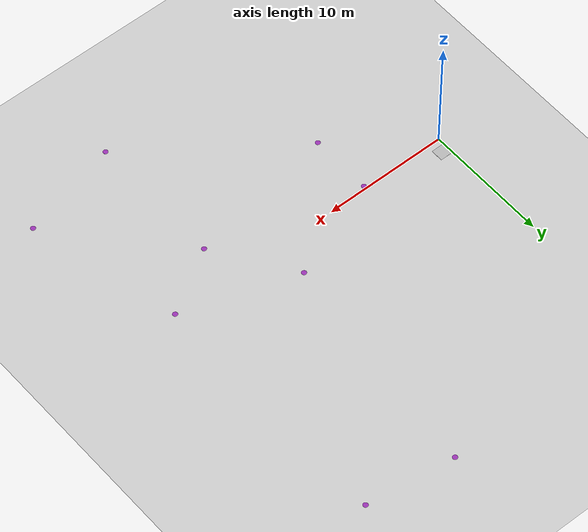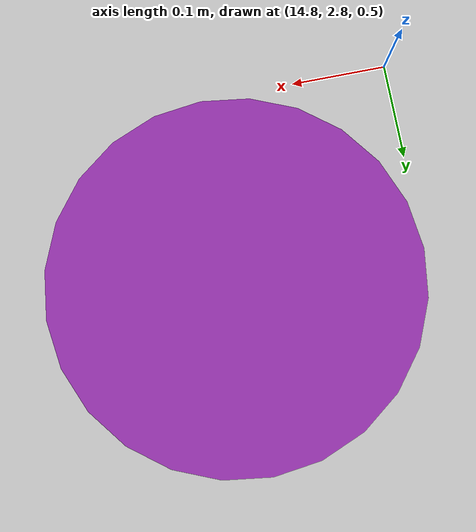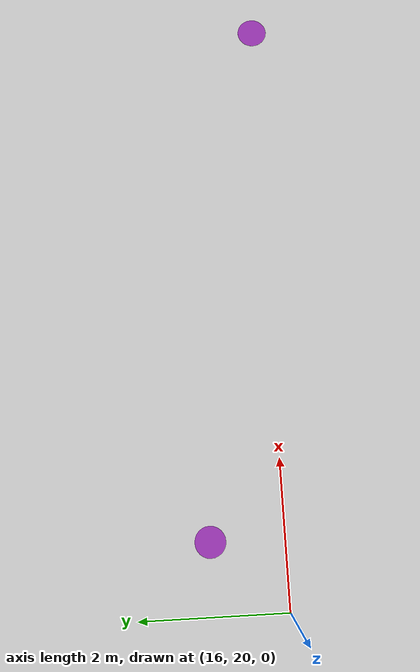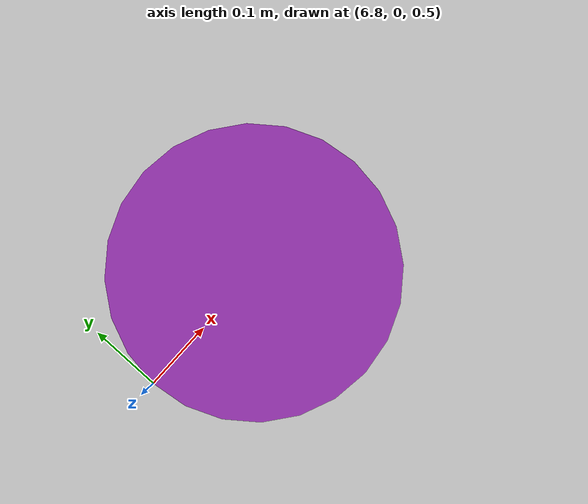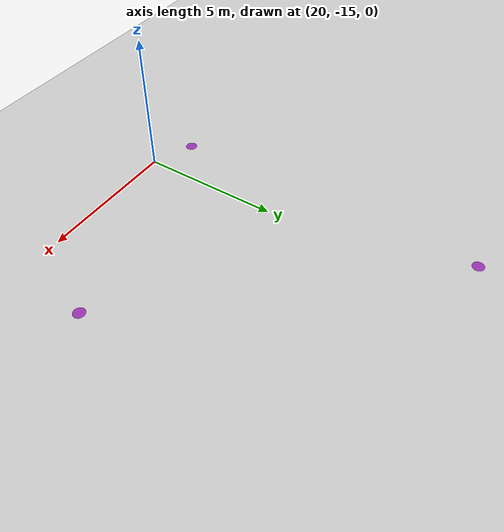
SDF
<sdf version="1.4">
 <world name="default">
  <light name="sun" type="directional">
   <pose>0 0 10 0 -0 0</pose>
   <diffuse>0.8 0.8 0.8 1</diffuse>
   <specular>0.2 0.2 0.2 1</specular>
   <attenuation>
    <range>1000</range>
    <constant>0.9</constant>
    <linear>0.01</linear>
    <quadratic>0.001</quadratic>
   </attenuation>
   <direction>-0.5 0.1 -0.9</direction>
  </light>
  <scene>
   <ambient>0.5 0.5 0.5 1</ambient>
   <sky><clouds><speed>12</speed></clouds></sky>
   <shadows>0</shadows>
  </scene>
  <model name="ground_plane">
   <static>1</static>
   <link name="link">
    <collision name="collision">
     <geometry><plane><normal>0 0 1</normal><size>100 100</size></plane></geometry>
     <surface><friction><ode><mu>100</mu><mu2>50</mu2></ode></friction></surface>
    </collision>
    <visual name="visual">
     <cast_shadows>0</cast_shadows>
     <geometry><plane><normal>0 0 1</normal><size>100 100</size></plane></geometry>
     <material>
      <script>
       <uri>model://ocean/materials/scripts</uri>
       <uri>model://ocean/materials/textures</uri>
       <name>Ocean/Image</name>
      </script>
     </material>
    </visual>
    <velocity_decay><linear>0</linear><angular>0</angular></velocity_decay>
   </link>
  </model>
  <physics type="ode">
   <max_step_size>0.001</max_step_size>
   <real_time_factor>1</real_time_factor>
   <real_time_update_rate>1000</real_time_update_rate>
   <gravity>0 0 -9.8</gravity>
  </physics>
  <scene><ambient>0.4 0.4 0.4 1</ambient><background>0.7 0.7 0.7 1</background><shadows>1</shadows></scene>
  <model name="unit_cylinder_10_0">
   <pose>17 21 0.5 0 -0 0</pose>
   <link name="link">
    <inertial>
     <mass>1</mass>
     <inertia><ixx>1</ixx><ixy>0</ixy><ixz>0</ixz><iyy>1</iyy><iyz>0</iyz><izz>1</izz></inertia>
    </inertial>
    <collision name="collision">
     <geometry><cylinder><radius>0.2</radius><length>0.01</length></cylinder></geometry>
    </collision>
    <visual name="visual">
     <geometry><cylinder><radius>0.2</radius><length>.001</length></cylinder></geometry>
     <material>
      <script><uri>file://media/materials/scripts/gazebo.material</uri><name>Gazebo/Purple</name></script>
     </material>
    </visual>
    <velocity_decay><linear>0</linear><angular>0</angular></velocity_decay>
   </link>
   <static>0</static>
  </model>
  <model name="unit_cylinder_9_0">
   <pose>19 -14 0.5 0 -0 0</pose>
   <link name="link">
    <inertial>
     <mass>1</mass>
     <inertia><ixx>1</ixx><ixy>0</ixy><ixz>0</ixz><iyy>1</iyy><iyz>0</iyz><izz>1</izz></inertia>
    </inertial>
    <collision name="collision">
     <geometry><cylinder><radius>0.2</radius><length>0.01</length></cylinder></geometry>
    </collision>
    <visual name="visual">
     <geometry><cylinder><radius>0.2</radius><length>.001</length></cylinder></geometry>
     <material>
      <script><uri>file://media/materials/scripts/gazebo.material</uri><name>Gazebo/Purple</name></script>
     </material>
    </visual>
    <velocity_decay><linear>0</linear><angular>0</angular></velocity_decay>
   </link>
   <static>0</static>
  </model>
  <model name="unit_cylinder_8_0">
   <pose>27 -12 0.5 0 -0 0</pose>
   <link name="link">
    <inertial>
     <mass>1</mass>
     <inertia><ixx>1</ixx><ixy>0</ixy><ixz>0</ixz><iyy>1</iyy><iyz>0</iyz><izz>1</izz></inertia>
    </inertial>
    <collision name="collision">
     <geometry><cylinder><radius>0.2</radius><length>0.01</length></cylinder></geometry>
    </collision>
    <visual name="visual">
     <geometry><cylinder><radius>0.2</radius><length>.001</length></cylinder></geometry>
     <material>
      <script><uri>file://media/materials/scripts/gazebo.material</uri><name>Gazebo/Purple</name></script>
     </material>
    </visual>
    <velocity_decay><linear>0</linear><angular>0</angular></velocity_decay>
   </link>
   <static>0</static>
  </model>
  <model name="unit_cylinder_6_0">
   <pose>24 20 0.5 0 -0 0</pose>
   <link name="link">
    <inertial>
     <mass>1</mass>
     <inertia><ixx>1</ixx><ixy>0</ixy><ixz>0</ixz><iyy>1</iyy><iyz>0</iyz><izz>1</izz></inertia>
    </inertial>
    <collision name="collision">
     <geometry><cylinder><radius>0.2</radius><length>0.01</length></cylinder></geometry>
    </collision>
    <visual name="visual">
     <geometry><cylinder><radius>0.2</radius><length>.001</length></cylinder></geometry>
     <material>
      <script><uri>file://media/materials/scripts/gazebo.material</uri><name>Gazebo/Purple</name></script>
     </material>
    </visual>
    <velocity_decay><linear>0</linear><angular>0</angular></velocity_decay>
   </link>
   <static>0</static>
  </model>
  <model name="unit_cylinder_5_0">
   <pose>24 0 0.5 0 -0 0</pose>
   <link name="link">
    <inertial>
     <mass>1</mass>
     <inertia><ixx>1</ixx><ixy>0</ixy><ixz>0</ixz><iyy>1</iyy><iyz>0</iyz><izz>1</izz></inertia>
    </inertial>
    <collision name="collision">
     <geometry><cylinder><radius>0.2</radius><length>0.01</length></cylinder></geometry>
    </collision>
    <visual name="visual">
     <geometry><cylinder><radius>0.2</radius><length>.001</length></cylinder></geometry>
     <material>
      <script><uri>file://media/materials/scripts/gazebo.material</uri><name>Gazebo/Purple</name></script>
     </material>
    </visual>
    <velocity_decay><linear>0</linear><angular>0</angular></velocity_decay>
   </link>
   <static>0</static>
  </model>
  <model name="unit_cylinder_2_0">
   <pose>15 3 0.5 0 -0 0</pose>
   <link name="link">
    <inertial>
     <mass>1</mass>
     <inertia><ixx>1</ixx><ixy>0</ixy><ixz>0</ixz><iyy>1</iyy><iyz>0</iyz><izz>1</izz></inertia>
    </inertial>
    <collision name="collision">
     <geometry><cylinder><radius>0.2</radius><length>0.01</length></cylinder></geometry>
    </collision>
    <visual name="visual">
     <geometry><cylinder><radius>0.2</radius><length>.001</length></cylinder></geometry>
     <material>
      <script><uri>file://media/materials/scripts/gazebo.material</uri><name>Gazebo/Purple</name></script>
     </material>
    </visual>
    <velocity_decay><linear>0</linear><angular>0</angular></velocity_decay>
   </link>
   <static>0</static>
  </model>
  <model name="unit_cylinder_3_0">
   <pose>19 -3 0.5 0 -0 0</pose>
   <link name="link">
    <inertial>
     <mass>1</mass>
     <inertia><ixx>1</ixx><ixy>0</ixy><ixz>0</ixz><iyy>1</iyy><iyz>0</iyz><izz>1</izz></inertia>
    </inertial>
    <collision name="collision">
     <geometry><cylinder><radius>0.2</radius><length>0.01</length></cylinder></geometry>
    </collision>
    <visual name="visual">
     <geometry><cylinder><radius>0.2</radius><length>.001</length></cylinder></geometry>
     <material>
      <script><uri>file://media/materials/scripts/gazebo.material</uri><name>Gazebo/Purple</name></script>
     </material>
    </visual>
    <velocity_decay><linear>0</linear><angular>0</angular></velocity_decay>
   </link>
   <static>0</static>
  </model>
  <model name="unit_cylinder_4_0">
   <pose>7 -5 0.5 0 -0 0</pose>
   <link name="link">
    <inertial>
     <mass>1</mass>
     <inertia><ixx>1</ixx><ixy>0</ixy><ixz>0</ixz><iyy>1</iyy><iyz>0</iyz><izz>1</izz></inertia>
    </inertial>
    <collision name="collision">
     <geometry><cylinder><radius>0.2</radius><length>0.01</length></cylinder></geometry>
    </collision>
    <visual name="visual">
     <geometry><cylinder><radius>0.2</radius><length>.001</length></cylinder></geometry>
     <material>
      <script><uri>file://media/materials/scripts/gazebo.material</uri><name>Gazebo/Purple</name></script>
     </material>
    </visual>
    <velocity_decay><linear>0</linear><angular>0</angular></velocity_decay>
   </link>
   <static>0</static>
  </model>
  <model name="unit_cylinder_1_0">
   <pose>7 0 0.5 0 -0 0</pose>
   <link name="link">
    <inertial>
     <mass>1</mass>
     <inertia><ixx>1</ixx><ixy>0</ixy><ixz>0</ixz><iyy>1</iyy><iyz>0</iyz><izz>1</izz></inertia>
    </inertial>
    <collision name="collision">
     <geometry><cylinder><radius>0.2</radius><length>0.01</length></cylinder></geometry>
    </collision>
    <visual name="visual">
     <geometry><cylinder><radius>0.2</radius><length>.001</length></cylinder></geometry>
     <material>
      <script><uri>file://media/materials/scripts/gazebo.material</uri><name>Gazebo/Purple</name></script>
     </material>
    </visual>
    <velocity_decay><linear>0</linear><angular>0</angular></velocity_decay>
   </link>
   <static>0</static>
  </model>
  <model name="unit_box_1">
   <pose>0.56 0.99 0.00001 0 -0 0</pose>
   <link name="link">
    <inertial>
     <mass>1</mass>
     <inertia><ixx>1</ixx><ixy>0</ixy><ixz>0</ixz><iyy>1</iyy><iyz>0</iyz><izz>1</izz></inertia>
    </inertial>
    <collision name="collision"><geometry><box><size>1 1 0.01</size></box></geometry></collision>
    <visual name="visual">
     <geometry><box><size>1 1 0.01</size></box></geometry>
     <material>
      <script>
       <uri>model://helipad/materials/scripts</uri>
       <uri>model://helipad/materials/textures</uri>
       <name>Helipad/Image</name>
      </script>
     </material>
    </visual>
    <velocity_decay><linear>0</linear><angular>0</angular></velocity_decay>
   </link>
   <static>0</static>
  </model>
 </world>
</sdf>
